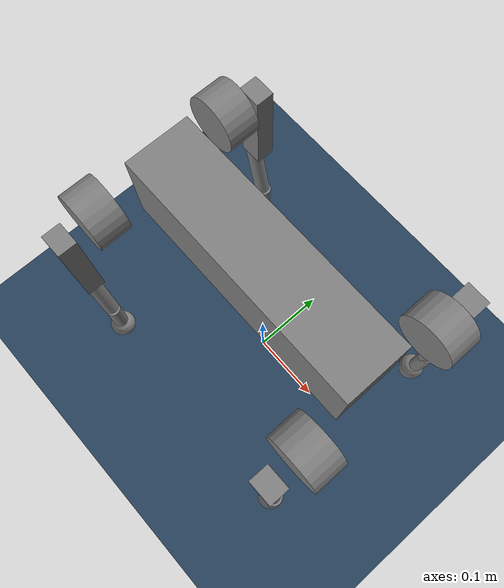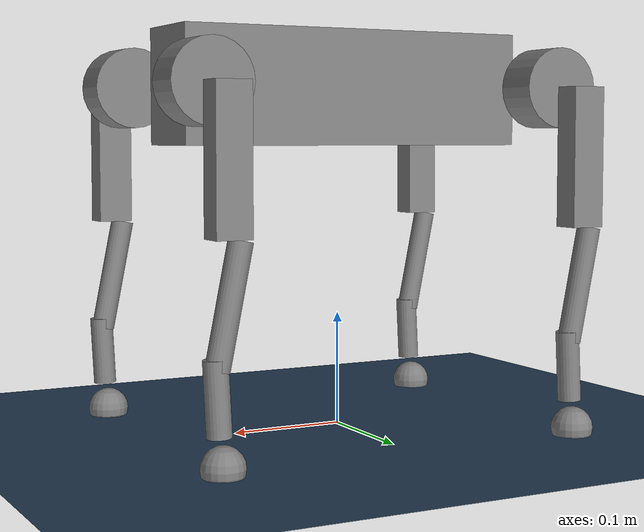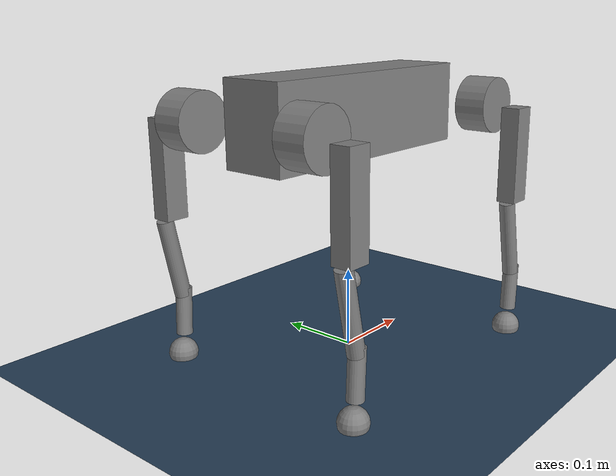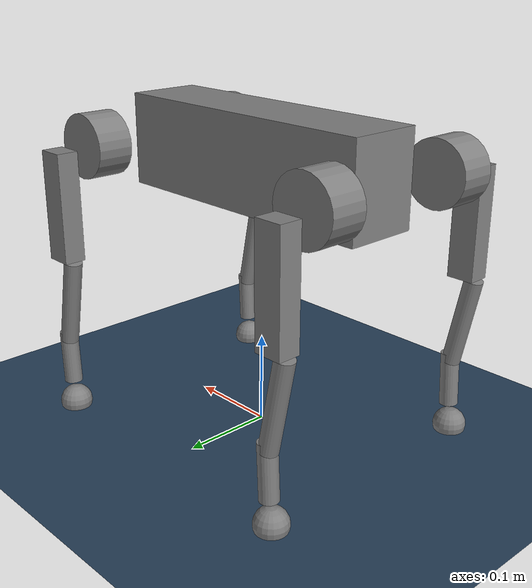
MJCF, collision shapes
<mujoco model="cyberdog2 scene">
  <include file="cyberdog2.xml"/>

  <statistic center="0.5 0.3 0.5" extent="0.6"/>

  <visual>
    <headlight diffuse="0.6 0.6 0.6" ambient="0.1 0.1 0.1" specular="0.9 0.9 0.9"/>
    <rgba haze="0.15 0.25 0.35 1"/>
    <global azimuth="-140" elevation="-20"/>
  </visual>

  <asset>
    <texture type="skybox" builtin="flat" rgb1="0 0 0" rgb2="0 0 0" width="512" height="3072"/>
    <texture type="2d" name="groundplane" builtin="checker" mark="edge" rgb1="0.2 0.3 0.4" rgb2="0.1 0.2 0.3" markrgb="0.8 0.8 0.8" width="300" height="300"/>
    <material name="groundplane" texture="groundplane" texuniform="true" texrepeat="5 5" reflectance="0.2"/>
  </asset>

  <worldbody>
    <light pos="1 0 3.5" dir="0 0 -1" directional="true"/>
    <geom name="floor" size="0 0 0.05" type="plane" material="groundplane"/>
  </worldbody>
</mujoco>

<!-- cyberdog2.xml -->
<mujoco model="cyberdog2">
  <compiler angle="radian" meshdir="meshes" autolimits="true" />

  <option cone="elliptic" impratio="100" />

  <default>
    <default class="cyberdog2">
      <geom friction="0.6" margin="0.001" condim="1"/>
      <joint axis="0 1 0" damping="0.1" armature="0.01" frictionloss="0.2"/>
      <motor ctrlrange="-12 12"/>
      <default class="abduction">
        <joint axis="1 0 0" range="-0.6807 0.6807"/>
      </default>
      <default class="hip">
        <default class="front_hip">
          <joint range="-1.3265 2.7925"/>
        </default>
        <default class="back_hip">
          <joint range="-0.9774 3.1416"/>
        </default>
      </default>
      <default class="knee">
        <joint range="-2.5307 -0.5236"/>
        <motor ctrlrange="-12 12"/>
      </default>
      <default class="visual">
        <geom type="mesh" contype="0" conaffinity="0" group="2"/>
      </default>
      <default class="collision">
        <geom group="3"/>
        <default class="foot">
          <geom size="0.018" pos="0.0055 0 -0.174" priority="1" condim="6"
            friction="0.6 0.02 0.01"/>
        </default>
      </default>
    </default>
  </default>

  <asset>
    <mesh file="body.stl" />
    <mesh file="abad.stl" />
    <mesh file="hip.stl" />
    <mesh file="hip_mirror.stl" />
    <mesh file="knee.stl" />
  </asset>

  <worldbody>
    <body name="base_link" pos="0 0 0.30" childclass="cyberdog2">
      <inertial pos="0.0273 -0.000242 0.0143"
        quat="0.400084 0.597164 -0.539649 -0.438300"
        mass="4.03"
        diaginertia="0.0517032 0.0514545 0.0153423" />
      <freejoint />
      <geom mesh="body" class="visual" />
      <geom size="0.16 0.04 0.05" type="box" class="collision" />
      <site name="imu" pos="0 0 0" />

      <!-- FL leg -->
      <body name="FL_hip" pos="0.164 0.042 0">
        <inertial pos="-0.00392 0.015 -0.000306"
          quat="-0.436967 0.413351 0.571911 -0.557781"
          mass="0.354"
          diaginertia="0.00028385 0.000232925 0.000182225" />
        <joint name="FL_hip_joint" class="abduction" />
        <geom mesh="abad" class="visual" />
        <geom size="0.035 0.02" pos="0 0.047 0" quat="1 1 0 0" type="cylinder" class="collision" />
        <body name="FL_thigh" pos="0 0.094 0">
          <inertial pos="-0.00212 -0.0212 -0.0184"
            quat="0.803529 0.130899 -0.057039 0.577887"
            mass="0.482"
            diaginertia="0.00104386 0.00100885 0.000287289" />
          <joint name="FL_thigh_joint" class="front_hip" />
          <geom mesh="hip" class="visual" />
          <geom size="0.06 0.012 0.015" pos="0 0 -0.06" quat="0.707107 0 0.707107 0"
            type="box" class="collision" />
          <body name="FL_calf" pos="0 0 -0.12">
            <inertial pos="0.0006 -4.72e-05 -0.0893"
              quat="-0.705285 -0.013170 0.012462 0.708692"
              mass="0.116"
              diaginertia="0.000674001 0.000668859 1.45399e-05" />
            <joint name="FL_calf_joint" class="knee" />
            <geom mesh="knee" class="visual" />
            <geom size="0.01 0.05" pos="0 0 -0.05" quat="0.995 0 -0.1 0"
              type="cylinder" class="collision" />
            <geom size="0.01 0.03" pos="0.01 0 -0.12" quat="0.999 0 0.025 0"
              type="cylinder" class="collision" />
            <geom name="FL" class="foot" />
            <body name="FL_foot" pos="0.0055 0 -0.174" />
          </body>
        </body>
      </body>

      <!-- FR leg -->
      <body name="FR_hip" pos="0.164 -0.042 0">
        <inertial pos="-0.00392 -0.015 -0.000306"
          quat="-0.557781 0.571911 0.413351 -0.436967"
          mass="0.354"
          diaginertia="0.00028385 0.000232925 0.000182225" />
        <joint name="FR_hip_joint" class="abduction" />
        <geom mesh="abad" quat="0 1 0 0" class="visual" />
        <geom size="0.035 0.02" pos="0 -0.047 0" quat="1 1 0 0" type="cylinder" class="collision" />
        <body name="FR_thigh" pos="0 -0.094 0">
          <inertial pos="-0.00212 0.0212 -0.0184"
            quat="0.803529 -0.130899 -0.057039 -0.577887"
            mass="0.482"
            diaginertia="0.00104386 0.00100885 0.000287289" />
          <joint name="FR_thigh_joint" class="front_hip" />
          <geom mesh="hip_mirror" class="visual" />
          <geom size="0.06 0.012 0.015" pos="0 0 -0.06" quat="0.707107 0 0.707107 0"
            type="box" class="collision" />
          <body name="FR_calf" pos="0 0 -0.12">
            <inertial pos="0.0006 -4.72e-05 -0.0893"
              quat="-0.705285 -0.013170 0.012462 0.708692"
              mass="0.116"
              diaginertia="0.000674001 0.000668859 1.45399e-05" />
            <joint name="FR_calf_joint" class="knee" />
            <geom mesh="knee" class="visual" />
            <geom size="0.01 0.05" pos="0 0 -0.05" quat="0.995 0 -0.1 0"
              type="cylinder" class="collision" />
            <geom size="0.01 0.03" pos="0.01 0 -0.12" quat="0.999 0 0.025 0"
              type="cylinder" class="collision" />
            <geom name="FR" class="foot" />
            <body name="FR_foot" pos="0.0055 0 -0.174" />
          </body>
        </body>
      </body>

      <!-- RL leg -->
      <body name="RL_hip" pos="-0.164 0.042 0">
        <inertial pos="0.00392 0.015 -0.000306"
          quat="0.571911 -0.557781 -0.436967 0.413351"
          mass="0.354"
          diaginertia="0.00028385 0.000232925 0.000182225" />
        <joint name="RL_hip_joint" class="abduction" />
        <geom mesh="abad" quat="0 0 1 0" class="visual" />
        <geom size="0.035 0.02" pos="0 0.047 0" quat="1 1 0 0" type="cylinder" class="collision" />
        <body name="RL_thigh" pos="0 0.094 0">
          <inertial pos="-0.00212 -0.0212 -0.0184"
            quat="0.803529 0.130899 -0.057039 0.577887"
            mass="0.482"
            diaginertia="0.00104386 0.00100885 0.000287289" />
          <joint name="RL_thigh_joint" class="back_hip" />
          <geom mesh="hip" class="visual" />
          <geom size="0.06 0.012 0.015" pos="0 0 -0.06" quat="0.707107 0 0.707107 0"
            type="box" class="collision" />
          <body name="RL_calf" pos="0 0 -0.12">
            <inertial pos="0.0006 -4.72e-05 -0.0893"
              quat="-0.705285 -0.013170 0.012462 0.708692"
              mass="0.116"
              diaginertia="0.000674001 0.000668859 1.45399e-05" />
            <joint name="RL_calf_joint" class="knee" />
            <geom mesh="knee" class="visual" />
            <geom size="0.01 0.05" pos="0 0 -0.05" quat="0.995 0 -0.1 0"
              type="cylinder" class="collision" />
            <geom size="0.01 0.03" pos="0.01 0 -0.12" quat="0.999 0 0.025 0"
              type="cylinder" class="collision" />
            <geom name="RL" class="foot" />
            <body name="RL_foot" pos="0.0055 0 -0.174" />
          </body>
        </body>
      </body>

      <!-- RR leg -->
      <body name="RR_hip" pos="-0.164 -0.042 0">
        <inertial pos="0.00392 -0.015 -0.000306"
          quat="0.413351 -0.436967 -0.557781 0.571911"
          mass="0.354"
          diaginertia="0.00028385 0.000232925 0.000182225" />
        <joint name="RR_hip_joint" class="abduction" />
        <geom mesh="abad" quat="0 0 0 1" class="visual" />
        <geom size="0.035 0.02" pos="0 -0.047 0" quat="1 1 0 0" type="cylinder" class="collision" />
        <body name="RR_thigh" pos="0 -0.094 0">
          <inertial pos="-0.00212 0.0212 -0.0184"
            quat="0.803529 -0.130899 -0.057039 -0.577887"
            mass="0.482"
            diaginertia="0.00104386 0.00100885 0.000287289" />
          <joint name="RR_thigh_joint" class="back_hip" />
          <geom mesh="hip_mirror" class="visual" />
          <geom size="0.06 0.012 0.015" pos="0 0 -0.06" quat="0.707107 0 0.707107 0"
            type="box" class="collision" />
          <body name="RR_calf" pos="0 0 -0.12">
            <inertial pos="0.0006 -4.72e-05 -0.0893"
              quat="-0.705285 -0.013170 0.012462 0.708692"
              mass="0.116"
              diaginertia="0.000674001 0.000668859 1.45399e-05" />
            <joint name="RR_calf_joint" class="knee" />
            <geom mesh="knee" class="visual" />
            <geom size="0.01 0.05" pos="0 0 -0.05" quat="0.995 0 -0.1 0"
              type="cylinder" class="collision" />
            <geom size="0.01 0.03" pos="0.01 0 -0.12" quat="0.999 0 0.025 0"
              type="cylinder" class="collision" />
            <geom name="RR" class="foot" />
            <body name="RR_foot" pos="0.0055 0 -0.174" />
          </body>
        </body>
      </body>
    </body>
  </worldbody>

  <actuator>
    <motor class="abduction" name="FL_hip" joint="FL_hip_joint" />
    <motor class="hip" name="FL_thigh" joint="FL_thigh_joint" />
    <motor class="knee" name="FL_calf" joint="FL_calf_joint" />
    <motor class="abduction" name="FR_hip" joint="FR_hip_joint" />
    <motor class="hip" name="FR_thigh" joint="FR_thigh_joint" />
    <motor class="knee" name="FR_calf" joint="FR_calf_joint" />
    <motor class="abduction" name="RL_hip" joint="RL_hip_joint" />
    <motor class="hip" name="RL_thigh" joint="RL_thigh_joint" />
    <motor class="knee" name="RL_calf" joint="RL_calf_joint" />
    <motor class="abduction" name="RR_hip" joint="RR_hip_joint" />
    <motor class="hip" name="RR_thigh" joint="RR_thigh_joint" />
    <motor class="knee" name="RR_calf" joint="RR_calf_joint" />
  </actuator>

  <keyframe>
    <key name="home" qpos="0 0 0.25 1 0 0 0 0 0.8 -1.5 0 0.8 -1.5 0 1.0 -1.5 0 1.0 -1.5"
      ctrl="0 0.8 -1.5 0 0.8 -1.5 0 1.0 -1.5 0 1.0 -1.5" />
  </keyframe>
</mujoco>
